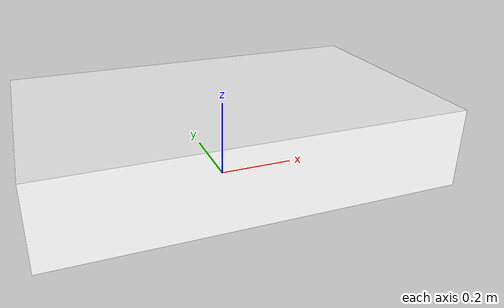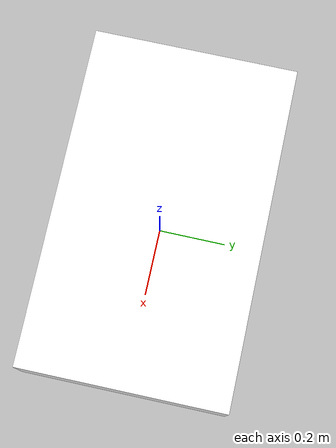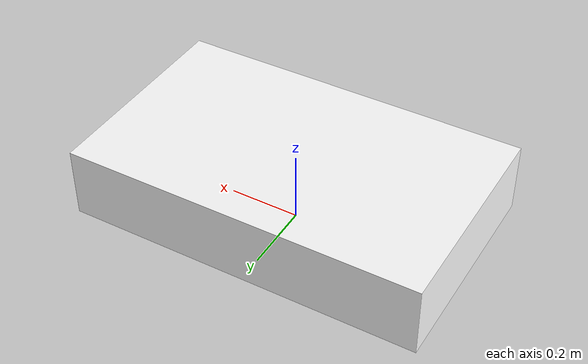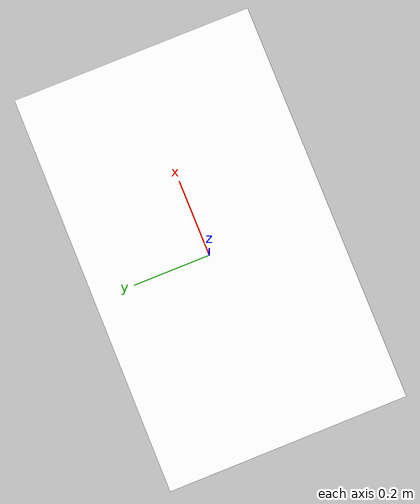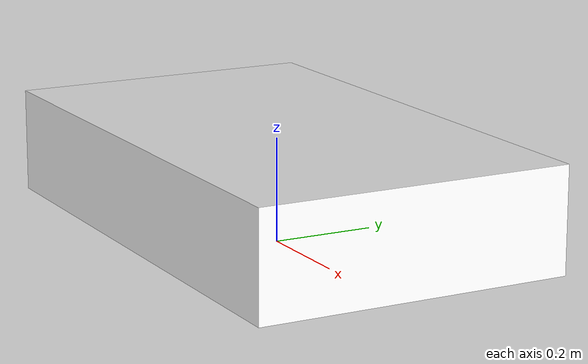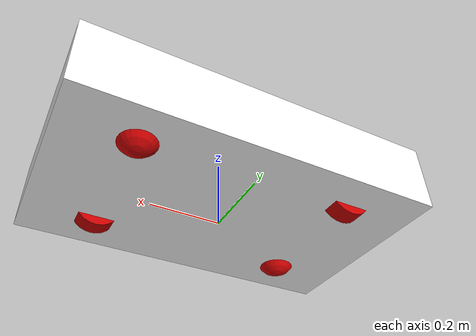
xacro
<?xml version="1.0"?>
<robot xmlns:xacro="http://www.ros.org/wiki/xacro" name="sd_vehicle">

    <!-- COMMON INCLUDES -->
    <xacro:include filename="$(find common_description)/urdf/colors.xacro" />
    <xacro:include filename="$(find common_description)/urdf/constants.xacro" />
    <xacro:include filename="$(find common_description)/urdf/steer_driven_wheel.urdf.xacro" />
    <xacro:include filename="$(find common_description)/urdf/free_wheel.urdf.xacro" />
    <xacro:include filename="$(find common_description)/urdf/sensors/sick_nanoscan3.urdf.xacro" />

    <!-- QUAD VEHICLE INCLUDES -->
    <xacro:include filename="$(find quad_description)/urdf/base.urdf.xacro" />

    <!-- VEHICLE DIMENSIONS -->
    <xacro:property name="vehicle_length" value="1.0" />
    <xacro:property name="vehicle_width" value="0.6" />
    <xacro:property name="vehicle_height" value="0.2" />
    <xacro:property name="ground_clearance" value="0.025" />

    <!-- WHEEL SETUP -->
    <xacro:property name="wheel_diameter" value="0.13" />
    <xacro:property name="wheel_width" value="0.05" />

    <xacro:property name="wheel_0_origin_x" value="${0.3 * vehicle_length}" />
    <xacro:property name="wheel_0_origin_y" value="${-0.3 * vehicle_width}" />
    <xacro:property name="wheel_0_origin_z" value="${-(ground_clearance + vehicle_height / 2 - wheel_diameter / 2)}" />

    <xacro:property name="wheel_1_origin_x" value="${-wheel_0_origin_x}" />
    <xacro:property name="wheel_1_origin_y" value="${-wheel_0_origin_y}" />
    <xacro:property name="wheel_1_origin_z" value="${wheel_0_origin_z}" />

    <xacro:property name="roller_0_origin_x" value="${wheel_0_origin_x}" />
    <xacro:property name="roller_0_origin_y" value="${-wheel_0_origin_y}" />
    <xacro:property name="roller_0_origin_z" value="${wheel_0_origin_z}" />

    <xacro:property name="roller_1_origin_x" value="${wheel_1_origin_x}" />
    <xacro:property name="roller_1_origin_y" value="${-wheel_1_origin_y}" />
    <xacro:property name="roller_1_origin_z" value="${wheel_0_origin_z}" />

    <!-- LASER SCANNER SETUP -->
    <xacro:property name="front_scanner_origin_x" value="${vehicle_length / 2 - 0.075}" />
    <xacro:property name="front_scanner_origin_y" value="${vehicle_width / 2 - 0.075}" />
    <xacro:property name="front_scanner_origin_z" value="0.0" />

    <xacro:property name="rear_scanner_origin_x" value="${-(vehicle_length / 2 - 0.075)}" />
    <xacro:property name="rear_scanner_origin_y" value="${-(vehicle_width / 2 - 0.075)}" />
    <xacro:property name="rear_scanner_origin_z" value="0.0" />

    <!-- LINKS -->
    <xacro:property name="base_footprint" value="base_footprint" />
    <xacro:property name="base_link" value="base_link" />

    <!-- TOPICS -->
    <xacro:property name="front_laser_topic" value="front_scan" />
    <xacro:property name="rear_laser_topic" value="rear_scan" />

    <!-- BASE -->
    <xacro:base_setup />

    <!-- DRIVEN WHEELS -->
    <xacro:sd_wheel name="front_wheel" parent="${base_link}">
        <origin xyz="${wheel_0_origin_x} ${wheel_0_origin_y} ${wheel_0_origin_z}" rpy="0.0 0.0 0.0" />
    </xacro:sd_wheel>

    <xacro:sd_wheel name="rear_wheel" parent="${base_link}">
        <origin xyz="${wheel_1_origin_x} ${wheel_1_origin_y} ${wheel_1_origin_z}" rpy="0.0 0.0 0.0" />
    </xacro:sd_wheel>

    <!-- FREE WHEELS -->
    <xacro:free_wheel name="front_roller" parent="${base_link}">
        <origin xyz="${roller_0_origin_x} ${roller_0_origin_y} ${roller_0_origin_z}" rpy="0.0 0.0 0.0" />
    </xacro:free_wheel>

    <xacro:free_wheel name="rear_roller" parent="${base_link}">
        <origin xyz="${roller_1_origin_x} ${roller_1_origin_y} ${roller_1_origin_z}" rpy="0.0 0.0 0.0" />
    </xacro:free_wheel>

    <!-- SENSORS -->
    <xacro:sick_nanoscan3 name="front_scanner" parent="${base_link}" ros_topic="${front_laser_topic}">
        <origin xyz="${front_scanner_origin_x} ${front_scanner_origin_y} ${front_scanner_origin_z}" rpy="0.0 0.0 0.0" />
    </xacro:sick_nanoscan3>

    <xacro:sick_nanoscan3 name="rear_scanner" parent="${base_link}" ros_topic="${rear_laser_topic}">
        <origin xyz="${rear_scanner_origin_x} ${rear_scanner_origin_y} ${rear_scanner_origin_z}" rpy="0.0 0.0 ${M_PI}" />
    </xacro:sick_nanoscan3>

</robot>

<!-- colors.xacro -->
<!-- Source: https://github.com/ROBOTIS-GIT/turtlebot3/blob/master/turtlebot3_description/urdf/common_properties.xacro-->

<robot name="xacro_properties" xmlns:xacro="http://ros.org/wiki/xacro">

  <!-- Init colour -->
  <material name="black">
      <color rgba="0.0 0.0 0.0 1.0"/>
  </material>

  <material name="dark">
    <color rgba="0.3 0.3 0.3 1.0"/>
  </material>
  <material name="light_black">
    <color rgba="0.4 0.4 0.4 1.0"/>
  </material>

  <material name="blue">
    <color rgba="0.0 0.0 0.8 1.0"/>
  </material>

  <material name="green">
    <color rgba="0.0 0.8 0.0 1.0"/>
  </material>

  <material name="grey">
    <color rgba="0.5 0.5 0.5 1.0"/>
  </material>

  <material name="orange">
    <color rgba="${255/255} ${108/255} ${10/255} 1.0"/>
  </material>

  <material name="brown">
    <color rgba="${222/255} ${207/255} ${195/255} 1.0"/>
  </material>

  <material name="red">
    <color rgba="0.8 0.0 0.0 1.0"/>
  </material>

  <material name="white">
    <color rgba="1.0 1.0 1.0 1.0"/>
  </material>
</robot>

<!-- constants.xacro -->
<robot xmlns:xacro="http://www.ros.org/wiki/xacro">

    <xacro:property name="M_PI" value="3.14159265359" />

</robot>

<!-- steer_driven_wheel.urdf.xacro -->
<robot xmlns:xacro="http://www.ros.org/wiki/xacro">

    <xacro:macro name="sd_wheel" params="name parent *origin">
        <!-- STEERING -->
        <link name="${name}_steer_link">
            <inertial>
                <mass value="0.001" />
                <origin xyz="0 0 0" rpy="0 0 0" />
                <inertia ixx="0.0001" ixy="0" ixz="0" iyy="0.000001" iyz="0" izz="0.0001" />
            </inertial>

        </link>

        <joint name="${name}_steer_joint" type="revolute">
            <parent link="${parent}"/>
            <child link="${name}_steer_link"/>
            <xacro:insert_block name="origin" />
            <axis xyz="0 0 1" />
            <limit lower="0" upper="${2 * M_PI}"
                   effort="30" velocity="${2 * M_PI}" />
        </joint>

        <!-- DRIVING -->
        <link name="${name}_drive_link">
            <inertial>
                <mass value="0.001" />
                <origin xyz="0 0 0" rpy="0 0 0" />
                <inertia ixx="0.0001" ixy="0" ixz="0" iyy="0.000001" iyz="0" izz="0.0001" />
            </inertial>

            <visual>
                <origin xyz="0.0 0.0 0.0" rpy="0.0 0.0 0.0"/>
                <geometry>
                    <!--mesh filename="file:///$(find pia-description)/meshes/mecanum_wheel_right.stl" scale="0.001 0.001 0.001"/-->
                    <cylinder radius="${wheel_diameter / 2}" length="${wheel_width}" />
                </geometry>
                <material name="red" />
            </visual>

            <collision>
                <origin xyz="0.0 0.0 0.0" rpy="0.0 0.0 0.0"/>
                <geometry>
                    <cylinder radius="${wheel_diameter / 2}" length="${wheel_width}" />
                </geometry>
            </collision>
        </link>

        <joint name="${name}_drive_joint" type="continuous">
            <parent link="${name}_steer_link"/>
            <child link="${name}_drive_link"/>
            <origin xyz="0.0 0.0 0.0" rpy="${M_PI / 2} ${M_PI / 2} 0.0" />
            <axis xyz="0 0 1" />
        </joint>
    </xacro:macro>
</robot>

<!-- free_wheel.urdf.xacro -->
<robot xmlns:xacro="http://www.ros.org/wiki/xacro">

    <xacro:macro name="free_wheel" params="name parent *origin">
        <link name="${name}_link">
            <inertial>
                <mass value="0.001" />
                <origin xyz="0 0 0" rpy="0 0 0" />
                <inertia ixx="0.0001" ixy="0" ixz="0" iyy="0.000001" iyz="0" izz="0.0001" />
            </inertial>

            <visual>
                <origin xyz="0.0 0.0 0.0" rpy="0.0 0.0 0.0"/>
                <geometry>
                    <!--mesh filename="file:///$(find pia-description)/meshes/mecanum_wheel_right.stl" scale="0.001 0.001 0.001"/-->
                    <sphere radius="${wheel_diameter / 2}" />
                </geometry>
                <material name="red" />
            </visual>

            <collision>
                <origin xyz="0.0 0.0 0.0" rpy="0.0 0.0 0.0"/>
                <geometry>
                    <sphere radius="${wheel_diameter / 2}" />
                </geometry>
            </collision>
        </link>

        <joint name="${name}_joint" type="fixed">
            <parent link="${parent}"/>
            <child link="${name}_link"/>
            <xacro:insert_block name="origin" />
        </joint>
    </xacro:macro>
</robot>

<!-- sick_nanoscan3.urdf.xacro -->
<robot xmlns:xacro="http://www.ros.org/wiki/xacro">

    <xacro:include filename="$(find common_description)/urdf/sensors/laser_scanner.gazebo.xacro" />

    <xacro:macro name="sick_nanoscan3" params="name parent *origin ros_topic">
        <xacro:property name="update_rate" value="25.0" />
        <!--xacro:property name="min_angle" value="${-0.131944444 * 2 * M_PI}" /-->
        <!--xacro:property name="max_angle" value="${0.631944444 * 2 * M_PI}" /-->
        <xacro:property name="min_angle" value="0.0" />
        <xacro:property name="max_angle" value="${0.763888889 * 2 * M_PI}" />
        <xacro:property name="samples" value="2200" />

        <joint name="${name}_joint" type="fixed">
            <xacro:insert_block name="origin" />
            <parent link="${parent}"/>
            <child link="${name}_link"/>
        </joint>

        <link name="${name}_link" type="fixed">
            <visual>
                <origin xyz="0.0 0.0 0.0" rpy="0.0 0.0 0.0"/>
                <geometry>
                    <!--mesh filename="file:///$(find pia-description)/meshes/mecanum_wheel_right.stl" scale="0.001 0.001 0.001"/-->
                    <cylinder radius="0.05" length="0.10" />
                </geometry>
                <material name="blue" />
            </visual>
            <inertial>
                <mass value="0.001" />
                <origin xyz="0 0 0" rpy="0 0 0" />
                <inertia ixx="0.0001" ixy="0" ixz="0" iyy="0.000001" iyz="0" izz="0.0001" />
            </inertial>
        </link>
        <!-- gazebo extensions -->
        <xacro:laser_scanner_gazebo name="${name}" ros_topic="${ros_topic}" update_rate="${update_rate}" min_angle="${min_angle}" max_angle="${max_angle}" samples="${samples}" />
    </xacro:macro>
</robot>

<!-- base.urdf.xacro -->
<robot xmlns:xacro="http://www.ros.org/wiki/xacro">

    <!--xacro:macro name="base_setup" params="vehicle_length vehicle_width vehicle_height ground_clearance"-->
    <xacro:macro name="base_setup">
        <link name="base_footprint" />

        <joint name="base_joint" type="fixed">
            <parent link="base_footprint" />
            <child link="base_link" />
            <origin xyz="0.0 0.0 ${vehicle_height / 2 + ground_clearance}" rpy="0.0 0.0 0.0" />
        </joint>

        <link name="base_link">
            <visual>
                <origin xyz="0.0 0 0.0" rpy="0.0 0.0 0.0" />
                <geometry>
                    <!--mesh filename="package://turtlebot3_description/meshes/bases/burger_base.stl" scale="0.001 0.001 0.001"/-->
                    <box size="${vehicle_length} ${vehicle_width} ${vehicle_height}" />
                </geometry>
                <material name="white" />
            </visual>

        </link>
    </xacro:macro>
</robot>
